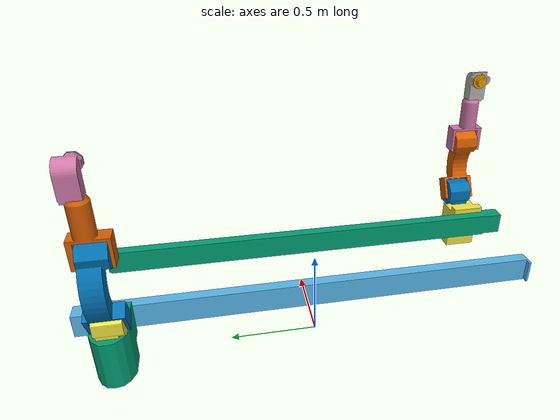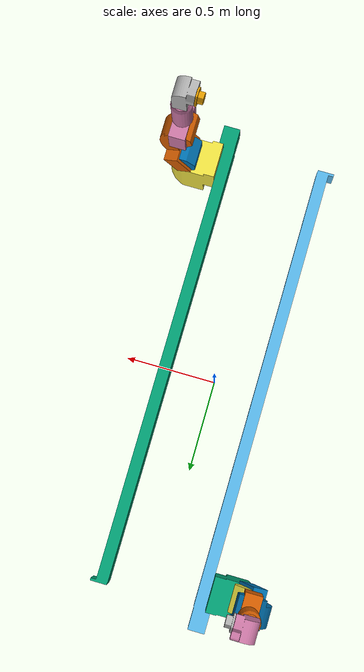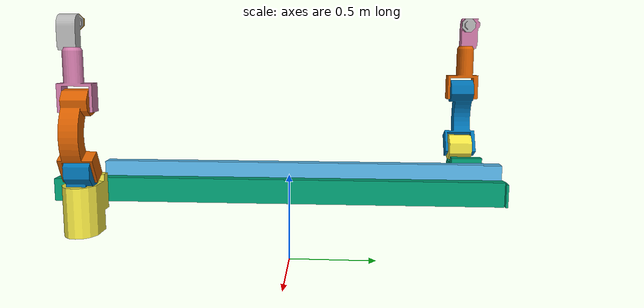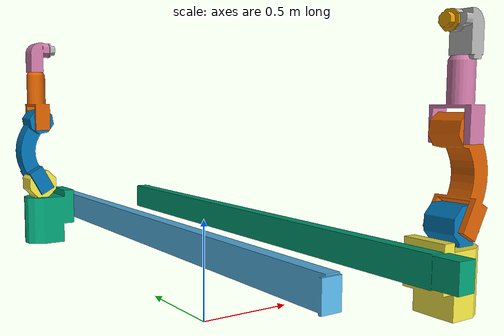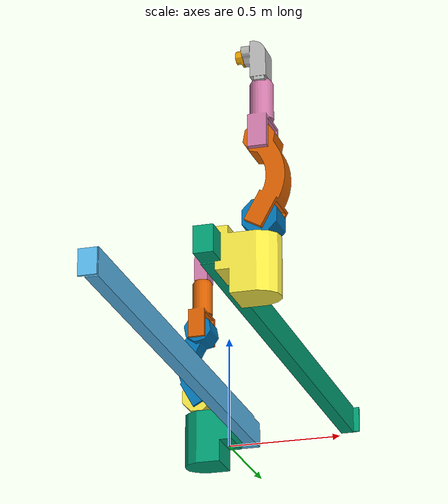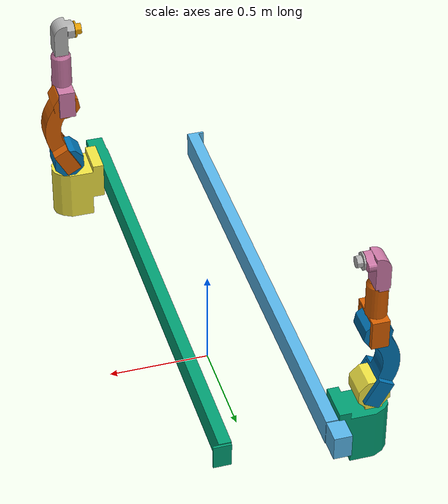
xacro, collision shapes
<?xml version="1.0"?>
<robot xmlns:xacro="http://www.ros.org/wiki/xacro" name="CORVUS-Arm">

  <xacro:property name="M_PI"    value="3.1415926535897931" />
  <xacro:property name="D_A2_A3" value="0.34985" />
  <xacro:property name="D_A3_A5" value="0.398" />
  <xacro:property name="J0_MAX"  value="2.1" /> <!-- This was 2.275 in the C++ code, but I think that was wrong. -JJO -->

  <xacro:macro name="gray_box" params="name lx ly lz mass *origin">
    <link name="${name}">
      <visual>
        <xacro:insert_block name="origin" />
        <geometry>
          <box size="${lx} ${ly} ${lz}"/>
        </geometry>
        <material name="dark_gray">
          <color rgba="0.1 0.1 0.1 1"/>
        </material>
      </visual>
      <collision>
        <xacro:insert_block name="origin" />
        <geometry>
          <box size="${lx} ${ly} ${lz}"/>
        </geometry>
      </collision>
      <inertial>
        <origin xyz="0 0 0" rpy="0 0 0"/>
        <mass value="${mass}"/>
        <inertia
          ixx="${mass/12*(ly*ly+lz*lz)}" ixy="00.00" ixz="00.00"
          iyy="${mass/12*(lx*lx+lz*lz)}" iyz="00.00"
          izz="${mass/12*(lx*lx+ly*ly)}"/>
      </inertial>
    </link>
  </xacro:macro>

  <link name="corvus_base">
  </link>

  <link name="corvus_or_table">
    <visual>
      <origin xyz="0 0 0" rpy="0 0 ${-M_PI / 2}" />
      <geometry>
        <mesh filename="package://corvus_description/meshes/OR_Table/model.dae" />
      </geometry>
    </visual>
    <inertial>
      <origin xyz="0 0 0" rpy="0 0 0"/>
      <mass value="100.0"/>
      <inertia
        ixx="36.68" ixy="00.00" ixz="00.00"
                    iyy="36.05" iyz="00.42"
                                izz="36.70"/>
    </inertial>
  </link>

  <joint name="or_table_to_base" type="fixed">
    <parent link="corvus_base"/>
    <child link="corvus_or_table"/>
  </joint>

  <xacro:macro name="corvus_arm" params="prefix reflect">
    <link name="${prefix}_link_0">
      <visual>
        <origin xyz="-0.1932 0.138 -0.097 " rpy="0 0 ${M_PI / 2}" />
        <geometry>
          <!-- /home/john/github/mrd-ros/src/urdf/corvus_link_0.dae" -->
          <mesh filename="package://corvus_description/meshes/corvus_link_0.dae" />
        </geometry>
      </visual>
      <collision>
        <origin xyz="-0.1932 0.136 -0.0981" rpy="${-M_PI / 2} ${M_PI} ${M_PI / 2}" />
        <geometry>
          <!-- /home/john/github/mrd-ros/src/urdf/corvus_link_0.STL" -->
          <mesh filename="package://corvus_description/meshes/corvus_link_0.STL" />
        </geometry>
      </collision>
      <inertial>
        <origin xyz="0 0 0" rpy="0 0 0"/>
        <mass value="20.65"/>
        <inertia
          ixx="36.68" ixy="00.00" ixz="00.00"
                      iyy="00.05" iyz="00.42"
                                  izz="36.70"/>
      </inertial>
    </link>

    <link name="${prefix}_link_1">
      <visual>
        <origin xyz="0 0 0" rpy="${M_PI / 2} ${M_PI} 0" />
        <geometry>
          <!-- /home/john/github/mrd-ros/src/urdf/corvus_link_1.dae" -->
          <mesh filename="package://corvus_description/meshes/corvus_link_1.dae" />
        </geometry>
      </visual>
      <collision>
        <origin xyz="0 0 0" rpy="${M_PI} 0 0" />
        <geometry>
          <!-- /home/john/github/mrd-ros/src/urdf/corvus_link_1.STL" -->
          <mesh filename="package://corvus_description/meshes/corvus_link_1.STL" />
        </geometry>
      </collision>
      <!-- These numbers are from the Solidworks models, but I haven't checked that the axes are correct: -->
      <inertial>
        <origin xyz="0 0 0" rpy="0 0 0"/>
        <mass value="13.27"/>
        <inertia
          ixx="00.42" ixy="00.09" ixz="00.00"
                      iyy="00.14" iyz="00.00"
                                  izz="00.49"/>
      </inertial>
    </link>

    <link name="${prefix}_link_2">
      <visual>
        <origin xyz="0 0 0" rpy="0 0 ${-M_PI / 2}" />
        <geometry>
          <mesh filename="package://corvus_description/meshes/corvus_link_2.dae" />
        </geometry>
      </visual>
      <collision>
        <origin xyz="0 0 0" rpy="${M_PI / 2} 0 ${M_PI / 2}" />
        <geometry>
          <mesh filename="package://corvus_description/meshes/corvus_link_2.STL" />
        </geometry>
      </collision>
      <!-- These numbers are from the Solidworks models, but I haven't checked that the axes are correct: -->
      <inertial>
        <origin xyz="0 0 0" rpy="0 0 0"/>
        <mass value="5.80"/>
        <inertia
          ixx="00.02" ixy="00.00"  ixz="00.00"
                      iyy="00.019" iyz="00.00"
                                   izz="00.015"/>
      </inertial>
    </link>

    <link name="${prefix}_link_3">
      <visual>
        <origin xyz="0 0 0" rpy="${-M_PI / 2} ${M_PI} 0" />
        <geometry>
          <mesh filename="package://corvus_description/meshes/corvus_link_3.dae" />
        </geometry>
      </visual>
      <collision>
        <origin xyz="0 0 0" rpy="0 0 0" />
        <geometry>
          <mesh filename="package://corvus_description/meshes/corvus_link_3.STL" />
        </geometry>
      </collision>
      <!-- These numbers are from the Solidworks models, but I haven't checked that the axes are correct: -->
      <inertial>
        <origin xyz="0 0 0" rpy="0 0 0"/>
        <mass value="7.40"/>
        <inertia
          ixx="00.76" ixy="00.01" ixz="00.00"
                      iyy="00.03" iyz="-0.06"
                                  izz="00.75"/>
      </inertial>
    </link>

    <link name="${prefix}_link_4">
      <visual>
        <origin xyz="0 0 0" rpy="${-M_PI / 2} ${M_PI} 0" />
        <geometry>
          <!-- /home/john/github/mrd-ros/src/urdf/corvus_link_4.dae" -->
          <mesh filename="package://corvus_description/meshes/corvus_link_4.dae" />
        </geometry>
      </visual>
      <collision>
        <origin xyz="0 0 0" rpy="0 0 0" />
        <geometry>
          <!-- /home/john/github/mrd-ros/src/urdf/corvus_link_4.STL" -->
          <mesh filename="package://corvus_description/meshes/corvus_link_4.STL" />
        </geometry>
      </collision>
      <!-- These numbers are from the Solidworks models, but I haven't checked that the axes are correct: -->
      <inertial>
        <origin xyz="0 0 0" rpy="0 0 0"/>
        <mass value="2.65"/>
        <inertia
          ixx="0.074" ixy="00.00" ixz="00.00"
                      iyy="0.007" iyz="00.00"
                                  izz="0.071"/>
      </inertial>
    </link>

    <link name="${prefix}_link_5">
      <visual>
        <origin xyz="0 0 0" rpy="0 ${M_PI} ${M_PI}" />
        <geometry>
          <!-- /home/john/github/mrd-ros/src/urdf/corvus_link_5.dae" -->
          <mesh filename="package://corvus_description/meshes/corvus_link_5.dae" />
        </geometry>
      </visual>
      <collision>
        <origin xyz="0 0 0" rpy="${-M_PI / 2} 0 ${M_PI}" />
        <geometry>
          <!-- /home/john/github/mrd-ros/src/urdf/corvus_link_5.STL" -->
          <mesh filename="package://corvus_description/meshes/corvus_link_5.STL" />
        </geometry>
      </collision>
      <!-- These numbers are from the Solidworks models, but I haven't checked that the axes are correct: -->
      <inertial>
        <origin xyz="0 0 0" rpy="0 0 0"/>
        <mass value="2.29"/>
        <inertia
          ixx="0.015" ixy="0.000" ixz="0.000"
                      iyy="0.004" iyz="0.001"
                                  izz="0.015"/>
      </inertial>
    </link>

    <link name="${prefix}_link_6">
      <visual>
        <origin xyz="0 0 0" rpy="0 ${M_PI / 2} 0" />
        <geometry>
          <!-- /home/john/github/mrd-ros/src/urdf/corvus_link_6.dae" -->
          <mesh filename="package://corvus_description/meshes/corvus_link_6.dae" />
        </geometry>
      </visual>
      <collision>
        <origin xyz="0 0 0" rpy="0 ${-M_PI / 2} 0" />
        <geometry>
          <!-- /home/john/github/mrd-ros/src/urdf/corvus_link_6.STL" -->
          <mesh filename="package://corvus_description/meshes/corvus_link_6.STL" />
        </geometry>
      </collision>
      <!-- These numbers are from the Solidworks models, but I haven't checked that the axes are correct: -->
      <inertial>
        <origin xyz="0 0 0" rpy="0 0 0"/>
        <mass value="0.396"/>
        <inertia
          ixx="0.00270" ixy="0.00000" ixz="0.00000"
                        iyy="0.02364" iyz="0.00000"
                                      izz="0.02364"/>
      </inertial>
    </link>

    <joint name="${prefix}_arm_to_base" type="fixed">
      <parent link="corvus_base"/>
      <child link="${prefix}_link_0"/>
      <origin xyz="${reflect * (0.1505+.611/2)} ${reflect * -J0_MAX / 2 } ${.600}" rpy="${M_PI / 2} ${M_PI} ${(reflect+1) / 2 * M_PI}" />
    </joint>

    <joint name="${prefix}_joint_0" type="prismatic">
      <parent link="${prefix}_link_0"/>
      <child link="${prefix}_link_1"/>
      <axis   xyz="0 0 1"/>
      <limit  lower="0" upper="${J0_MAX}" effort="1" velocity="1" />
      <!-- This is a ballpark guess for the AMC linear joint: -->
      <dynamics damping="20.0" friction="10.0"/>
    </joint>

    <joint name="${prefix}_joint_1" type="revolute">
      <parent link="${prefix}_link_1"/>
      <child link="${prefix}_link_2"/>
      <origin xyz="0 0 0" rpy="${M_PI / 2} ${M_PI / 2} 0" />
      <axis   xyz="0 0 1"/>
      <limit  lower="-${M_PI}" upper="${M_PI}" effort="260" velocity="${28 / 60}" />
      <!-- This is a ballpark guess for the Xenus joints: -->
      <dynamics damping="20.0" friction="5.0"/>
    </joint>

    <joint name="${prefix}_joint_2" type="revolute">
      <parent link="${prefix}_link_2"/>
      <child link="${prefix}_link_3"/>
      <origin xyz="0 0 0" rpy="${M_PI / 2} 0 ${M_PI / 2}" />
      <axis   xyz="0 0 1"/>
      <!--limit  lower="-M_PI/3" upper="M_PI/2" effort="260" velocity="28/60" -->
      <limit  lower="${-M_PI / 3}" upper="${M_PI / 2}" effort="260" velocity="${28 / 60}" />
      <!-- This is a ballpark guess for the Xenus joints: -->
      <dynamics damping="20.0" friction="5.0"/>
    </joint>

    <joint name="${prefix}_joint_3" type="revolute">
      <parent link="${prefix}_link_3"/>
      <child link="${prefix}_link_4"/>
      <origin xyz="0 ${D_A2_A3} 0" rpy="0 0 0" />
      <axis   xyz="0 0 1"/>
      <!--limit  lower="-M_PI/2" upper="M_PI*5/6" effort="260" velocity="28/60" -->
      <limit  lower="${-M_PI / 2}" upper="${M_PI * 5 / 6}" effort="260" velocity="${28 / 60}" />
      <!-- This is a ballpark guess for the Xenus joints: -->
      <dynamics damping="20.0" friction="5.0"/>
    </joint>

    <joint name="${prefix}_joint_4" type="revolute">
      <parent link="${prefix}_link_4"/>
      <child link="${prefix}_link_5"/>
      <origin xyz="0 ${D_A3_A5} 0" rpy="${-M_PI / 2} 0 0" />
      <axis   xyz="0 0 1"/>
      <limit  lower="-${M_PI}" upper="${M_PI}" effort="1" velocity="1" />
      <!-- This is a ballpark guess for the AMC joints: -->
      <dynamics damping="20.0" friction="100.0"/>
    </joint>

    <joint name="${prefix}_joint_5" type="continuous">
      <parent link="${prefix}_link_5"/>
      <child link="${prefix}_link_6"/>
      <origin xyz="0 0 0" rpy="${M_PI / 2} 0 ${-M_PI / 2}" />
      <axis   xyz="0 0 1"/>
      <limit  lower="-${M_PI}" upper="${M_PI}" effort="1" velocity="1" />
      <!-- This is a ballpark guess for the AMC joints: -->
      <dynamics damping="20.0" friction="100.0"/>
    </joint>

  </xacro:macro>

  <xacro:macro name="servo_gripper_claw" params="prefix reflect">

    <link name="servo_gripper_link_driver_${prefix}">
      <visual>
        <origin xyz="0 0 0" rpy="${(1-reflect)*M_PI / 2} 0 ${M_PI}" />
        <geometry>
          <mesh filename="package://corvus_description/meshes/servo_gripper_connector.dae" />
        </geometry>
      </visual>
      <collision>
        <origin xyz="0 0 0" rpy="${reflect*M_PI / 2} 0 0" />
        <geometry>
          <mesh filename="package://corvus_description/meshes/servo_gripper_connector.STL" />
        </geometry>
      </collision>
    </link>

    <link name="servo_gripper_link_tooth_${prefix}_upper">
      <visual>
        <origin xyz="0 0 ${((1-reflect)/2)*.00635}" rpy="${M_PI} 0 ${M_PI}" />
        <geometry>
          <mesh filename="package://corvus_description/meshes/servo_gripper_tooth.dae" />
        </geometry>
      </visual>
      <collision>
        <origin xyz="0 0 ${((1-reflect)/2)*.00635}" rpy="${-M_PI / 2} 0 0" />
        <geometry>
          <mesh filename="package://corvus_description/meshes/servo_gripper_tooth.STL" />
        </geometry>
      </collision>
    </link>

    <link name="servo_gripper_link_tooth_${prefix}_lower">
      <visual>
        <origin xyz="0 0 ${((1-reflect)/2)*.00635}" rpy="${M_PI} 0 ${M_PI}" />
        <geometry>
          <mesh filename="package://corvus_description/meshes/servo_gripper_tooth.dae" />
        </geometry>
      </visual>
      <collision>
        <origin xyz="0 0 ${((1-reflect)/2)*.00635}" rpy="${-M_PI / 2} 0 0" />
        <geometry>
          <mesh filename="package://corvus_description/meshes/servo_gripper_tooth.STL" />
        </geometry>
      </collision>
    </link>

    <link name="servo_gripper_link_connector_${prefix}_upper">
      <visual>
        <origin xyz="0 0 0" rpy="${M_PI} 0 ${M_PI}" />
        <geometry>
          <mesh filename="package://corvus_description/meshes/servo_gripper_connector.dae" />
        </geometry>
      </visual>
      <collision>
        <origin xyz="0 0 0" rpy="${-M_PI / 2} 0 0" />
        <geometry>
          <mesh filename="package://corvus_description/meshes/servo_gripper_connector.STL" />
        </geometry>
      </collision>
    </link>

    <link name="servo_gripper_link_connector_${prefix}_lower">
      <visual>
        <origin xyz="0 0 0" rpy="${M_PI} 0 ${M_PI}" />
        <geometry>
          <mesh filename="package://corvus_description/meshes/servo_gripper_connector.dae" />
        </geometry>
      </visual>
      <collision>
        <origin xyz="0 0 0" rpy="${-M_PI / 2} 0 0" />
        <geometry>
          <mesh filename="package://corvus_description/meshes/servo_gripper_connector.STL" />
        </geometry>
      </collision>
    </link>

    <joint name="servo_gripper_servo_${prefix}" type="revolute">
      <parent link="servo_gripper_link_base"/>
      <child link="servo_gripper_link_driver_${prefix}"/>
      <origin xyz="${reflect*0.020} -.0127 0" rpy="${M_PI / 2} 0 ${(1-reflect)*M_PI / 2}" />
      <axis   xyz="0 0 1"/>
      <limit  lower="0" upper="${M_PI/2}" effort="1" velocity="1" />
      <!-- This is a ballpark guess for the AMC joints: -->
      <dynamics damping="20.0" friction="100.0"/>
    </joint>

    <joint name="servo_gripper_tooth_mimic_${prefix}" type="revolute">
      <parent link="servo_gripper_link_driver_${prefix}"/>
      <child link="servo_gripper_link_tooth_${prefix}_upper"/>
      <origin xyz="0.050 0 0" rpy="0 0 ${M_PI / 2}" />
      <axis   xyz="0 0 1"/>
      <limit  lower="-${M_PI}" upper="${M_PI}" effort="1" velocity="1" />
      <mimic  joint="servo_gripper_servo_${prefix}" multiplier="-1" offset="${20*M_PI/180}"/>
      <dynamics damping="20.0" friction="100.0"/>
    </joint>

    <joint name="servo_gripper_tooths_${prefix}" type="fixed">
      <parent link="servo_gripper_link_tooth_${prefix}_upper"/>
      <child link="servo_gripper_link_tooth_${prefix}_lower"/>
      <origin xyz="0 0 ${reflect*(-0.00635)}" rpy="0 0 0" />
      <axis   xyz="0 0 1"/>
      <limit  lower="-${M_PI}" upper="${M_PI}" effort="1" velocity="1" />
    </joint>

    <joint name="servo_gripper_connector_mimic_${prefix}" type="revolute">
      <parent link="servo_gripper_link_tooth_${prefix}_lower"/>
      <child link="servo_gripper_link_connector_${prefix}_upper"/>
      <origin xyz="0.045 0 ${2*0.00635}" rpy="0 0 ${M_PI / 2}" />
      <axis   xyz="0 0 1"/>
      <limit  lower="-${M_PI}" upper="${M_PI}" effort="1" velocity="1" />
      <mimic  joint="servo_gripper_servo_${prefix}" multiplier="1" offset="${-20*M_PI/180}"/>
      <dynamics damping="20.0" friction="100.0"/>
    </joint>

    <joint name="servo_gripper_connectors_${prefix}" type="fixed">
      <parent link="servo_gripper_link_connector_${prefix}_upper"/>
      <child link="servo_gripper_link_connector_${prefix}_lower"/>
      <origin xyz="0 0 ${-3*0.00635}" rpy="0 0 0" />
      <axis   xyz="0 0 1"/>
      <limit  lower="-${M_PI}" upper="${M_PI}" effort="1" velocity="1" />
    </joint>

  </xacro:macro>

  <xacro:macro name="servo_gripper" params="prefix">

    <link name="servo_gripper_link_base">
      <visual>
        <origin xyz="0 0 0" rpy="${M_PI/2} ${M_PI} 0" />
        <geometry>
          <mesh filename="package://corvus_description/meshes/servo_gripper_base.dae" />
        </geometry>
      </visual>
      <collision>
        <origin xyz="0 0 0" rpy="${M_PI} 0 0" />
        <geometry>
          <mesh filename="package://corvus_description/meshes/servo_gripper_base.STL" />
        </geometry>
      </collision>
    </link>

    <joint name="servo_gripper_corvus_to_base" type="fixed">
      <parent link="${prefix}_link_6"/>
      <child link="servo_gripper_link_base"/>
      <origin xyz="0 -0.0323 ${0.0299+0.1073}" rpy="0 0 0" />
    </joint>

    <xacro:servo_gripper_claw prefix="right"  reflect="1" />
    <xacro:servo_gripper_claw prefix="left"  reflect="-1" />

  </xacro:macro>

  <xacro:corvus_arm prefix="green" reflect="1" />
  <xacro:corvus_arm prefix="gold"  reflect="-1" />

  <!-- This attaches an end effector to the gold arm -->
  <!-- Maybe end effectors should be choosable somehow? -->
  <!--xacro:servo_gripper prefix="gold" /-->
</robot>
